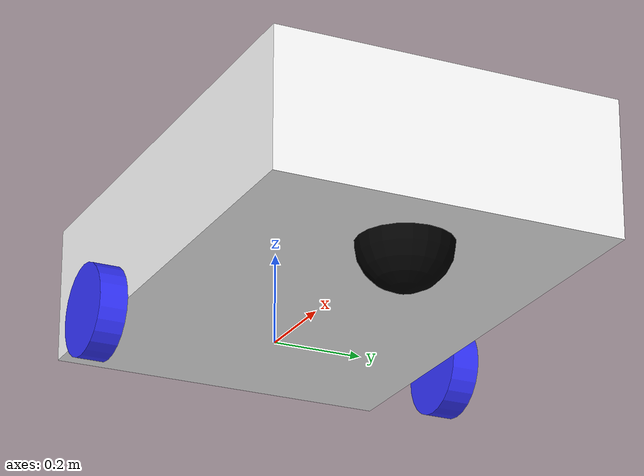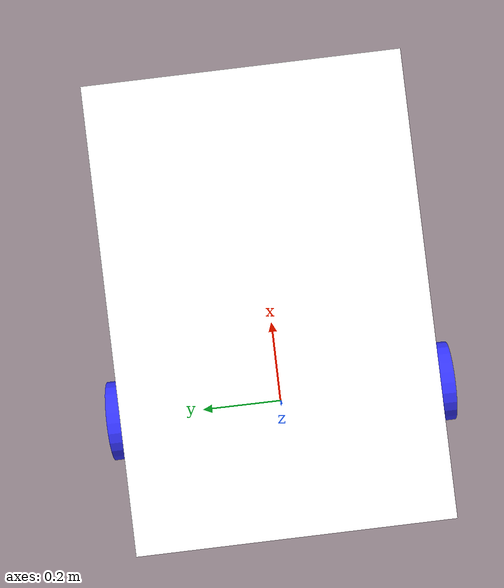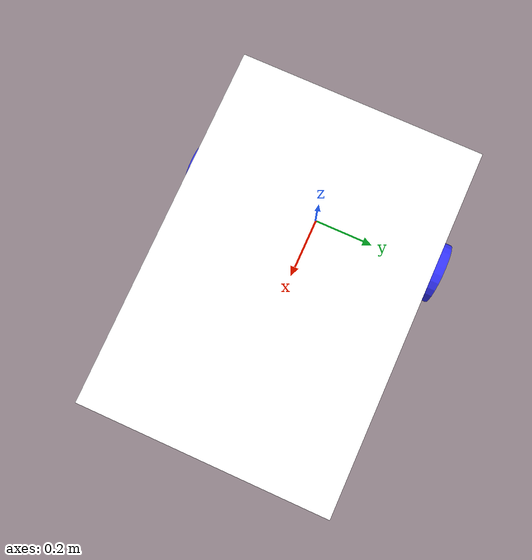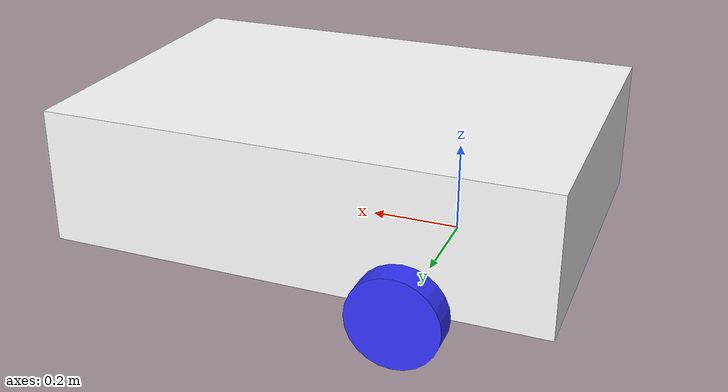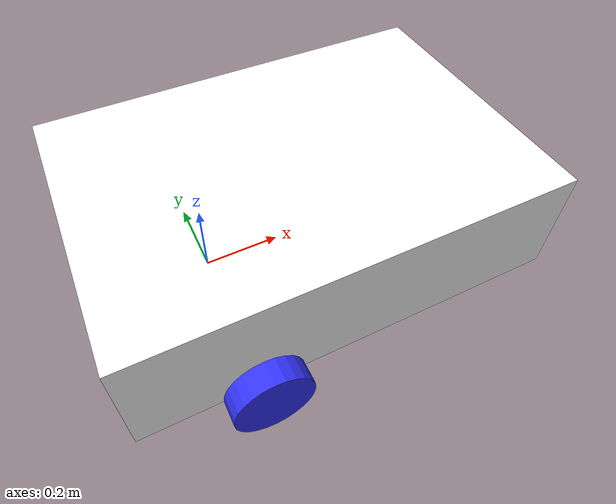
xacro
<?xml version="1.0"?>
<robot xmlns:xacro="http://www.ros.org/wiki/xacro">

    <xacro:include filename="inertial_macros.xacro"/>

    <!-- Color Definition-->
    <material name="white">
        <color rgba="1 1 1 1" />
    </material>

    <material name="orange">
        <color rgba="1 0.3 0.1 1" />
    </material>

    <material name="blue">
        <color rgba="0.2 0.2 1 1" />
    </material>

    <material name="black">
        <color rgba="0 0 0 1" />
    </material>

    <!--Link is the part, joint is the connection between links-->
    <link name ="base_link">

    </link>

    <!-- Joint between base and chassis-->
    <joint name="chassis_joint"  type="fixed">
        <parent link="base_link"/>
        <child link="chassis"/>
        <origin xyz="-0.30 0 0"/>
    </joint>

    <!-- Part properties of chasssis-->
    <link name="chassis">
        <visual>
            <origin xyz="0.55 0 0.15"/>
            <geometry>
                <box size="1.1 0.75 0.3"/>
            </geometry>
            <material name="white"/>
        </visual>

        <collision>
            <origin xyz="0.55 0 0.15"/>
            <geometry>
                <box size="1.1 0.75 0.3"/>
            </geometry>
        </collision>

        <xacro:inertial_box mass="5" x="1.1" y="0.75" z="0.3">
            <origin xyz="0.55 0 0.15" rpy="0 0 0"/>

        </xacro:inertial_box>
    </link>

    <gazebo reference="chassis">
        <material> Gazebo/White</material>
    </gazebo>

    <!-- Joint between chassis and left wheel check if wheel separation is correct with real robot-->
    <joint name="left_wheel_joint" type="continuous">
        <parent link="base_link"/>
        <child link="left_wheel"/>
        <origin xyz="0 0.405 0" rpy="-${pi/2} 0 0"/>
        <axis xyz="0 0 1"/>
    </joint>

    <link name="left_wheel">
        <visual>
            <geometry>
                <cylinder radius="0.1" length="0.06"/>
            </geometry>
            <material name="blue"/>
        </visual>
        <collision>
            <geometry>
                <cylinder radius="0.1" length="0.06"/>
            </geometry>
        </collision>

        <xacro:inertial_cylinder mass="3" length="0.06" radius="0.1">
                <origin xyz="0 0 0" rpy="0 0 0"/>
        </xacro:inertial_cylinder>
    </link>

    <gazebo reference="left_wheel">
        <material> Gazebo/Blue</material>
    </gazebo>

     <!-- Joint between chassis and left wheel check if wheel separation is correct with real robot-->
     <joint name="right_wheel_joint" type="continuous">
     <parent link="base_link"/>
     <child link="right_wheel"/>
     <origin xyz="0 -0.405 0" rpy="${pi/2} 0 0"/>
     <axis xyz="0 0 -1"/>
    </joint>

    <!--measure width of wheel-->
    <link name="right_wheel">
        <visual>
            <geometry>
                <cylinder radius="0.1" length="0.06"/>
            </geometry>
            <material name="blue"/>
        </visual>
        <collision>
            <geometry>
                <cylinder radius="0.1" length="0.06"/>
            </geometry>
        </collision>
        <xacro:inertial_cylinder mass="3" length="0.06" radius="0.1">
            <origin xyz="0 0 0" rpy="0 0 0"/>
        </xacro:inertial_cylinder>
    </link>

    <gazebo reference="right_wheel">
        <material> Gazebo/Blue</material>
    </gazebo>

    <!-- CASTER WHEEL LINK-->
    <joint name="caster_wheel_joint" type="fixed">
        <parent link="chassis"/>
        <child link="caster_wheel"/>
        <origin xyz="0.90 0 0"/>
    </joint>

    <link name="caster_wheel">
        <visual>
            <geometry>
                <sphere radius="0.1"/>
            </geometry>
            <material name="black"/>
        </visual>

        <collision>
            <geometry>
                <sphere radius="0.1"/>
               </geometry>
        </collision>
        <xacro:inertial_sphere mass="0.1" radius="0.1">
            <origin xyz="0 0 0" rpy="0 0 0"/>
        </xacro:inertial_sphere>
    </link>

    <gazebo reference="caster_wheel">
        <material> Gazebo/Black</material>
        <mu1 value="0.001"/>
        <mu2 value="0.001"/>
    </gazebo>

</robot>
